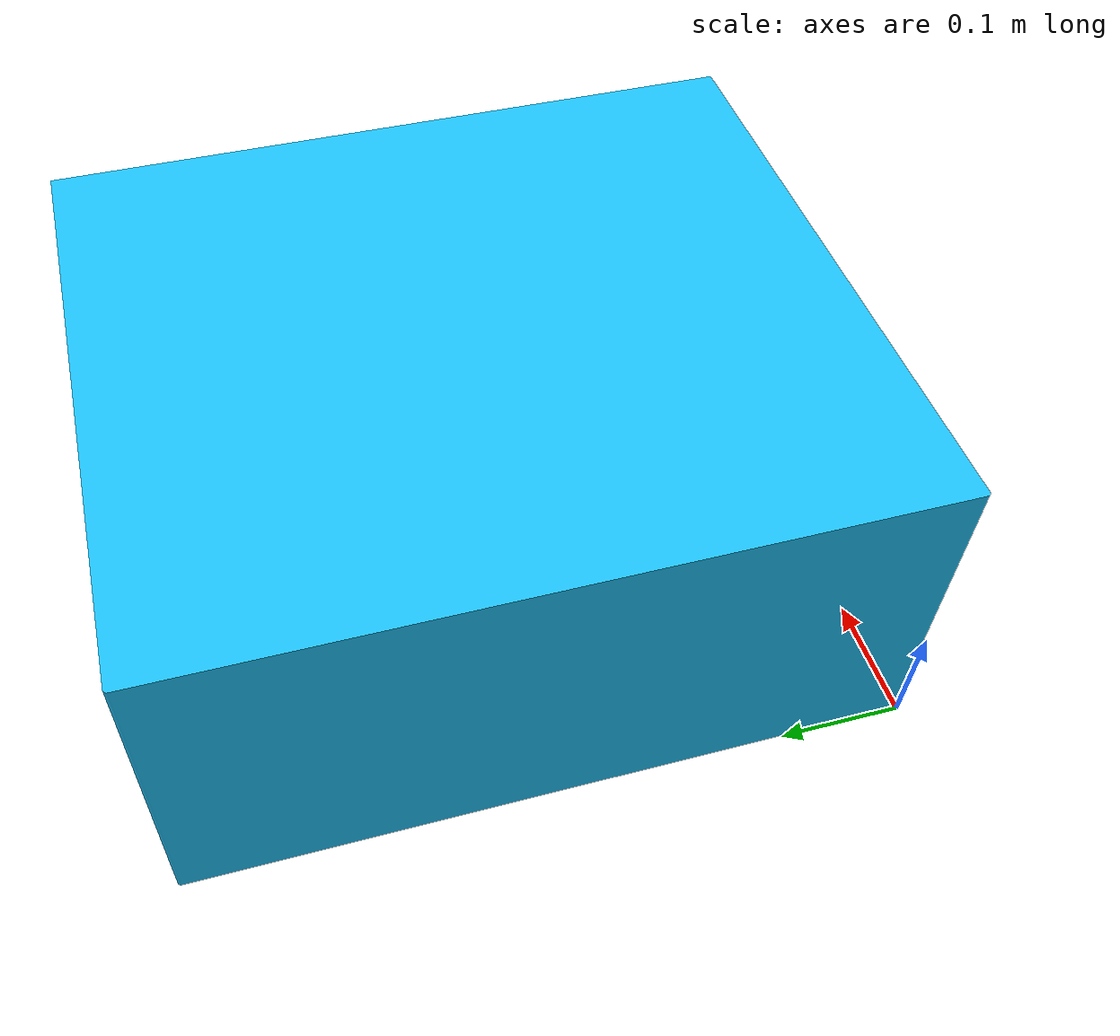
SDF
<?xml version="1.0"?>
<sdf version="1.6">
  <model name="r2_charging_station">
    <static>true</static>
    <link name="link">
      <inertial>
        <pose>.157 .291 .217 0 0 0</pose>
        <mass>4</mass>
        <inertia>
          <ixy>0</ixy>
          <ixz>-0.032</ixz>
          <iyz>0</iyz>
          <ixx>0.343</ixx>
          <iyy>0.182</iyy>
          <izz>0.423</izz>
        </inertia>
      </inertial>

      <collision name="collision">
        <geometry>
          <mesh>
            <uri>model://charging_station/meshes/Retainer_platform_Charing_Station.STL</uri>
            <scale>.001 .001 .001</scale>
          </mesh>
        </geometry>
        <surface>
          <contact>
            <ode>
              <kp>200000.0</kp>
              <max_vel>0.01</max_vel>
              <min_depth>0.001</min_depth>
            </ode>
          </contact>
        </surface>
      </collision>

      <visual name="visual">
        <geometry>
          <mesh>
            <uri>model://charging_station/meshes/Retainer_platform_Charing_Station.STL</uri>
            <scale>.001 .001 .001</scale>
          </mesh>
        </geometry>
        <meta>
          <layer> 1 </layer>
        </meta>
        <material>
          <diffuse>0.12 0.76 0.97 1</diffuse>
          <ambient>0.03 0.21 0.27 1</ambient>
        </material>
      </visual>
    </link>
  </model>
</sdf>
